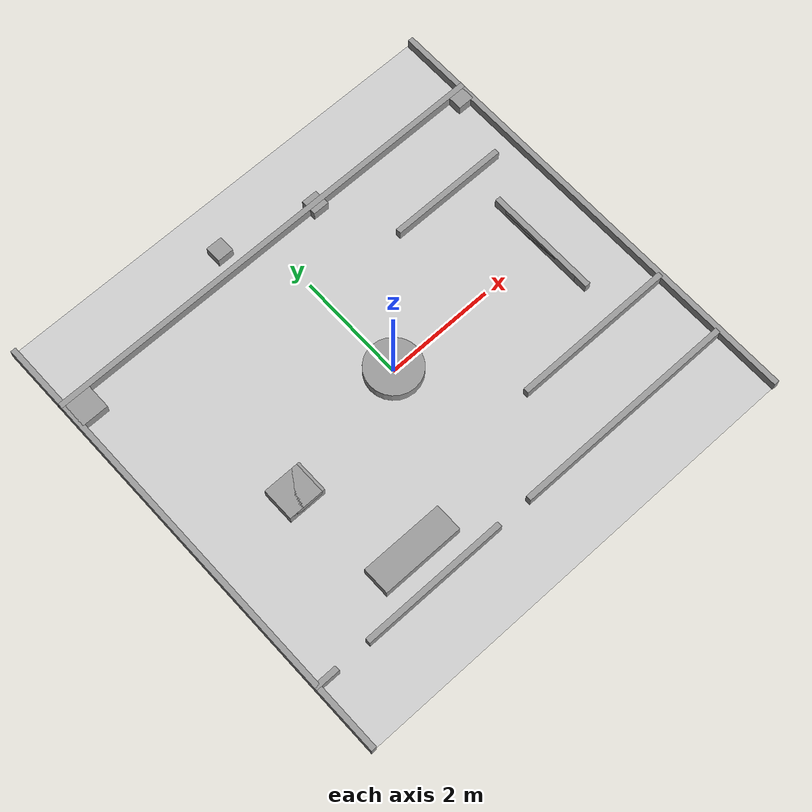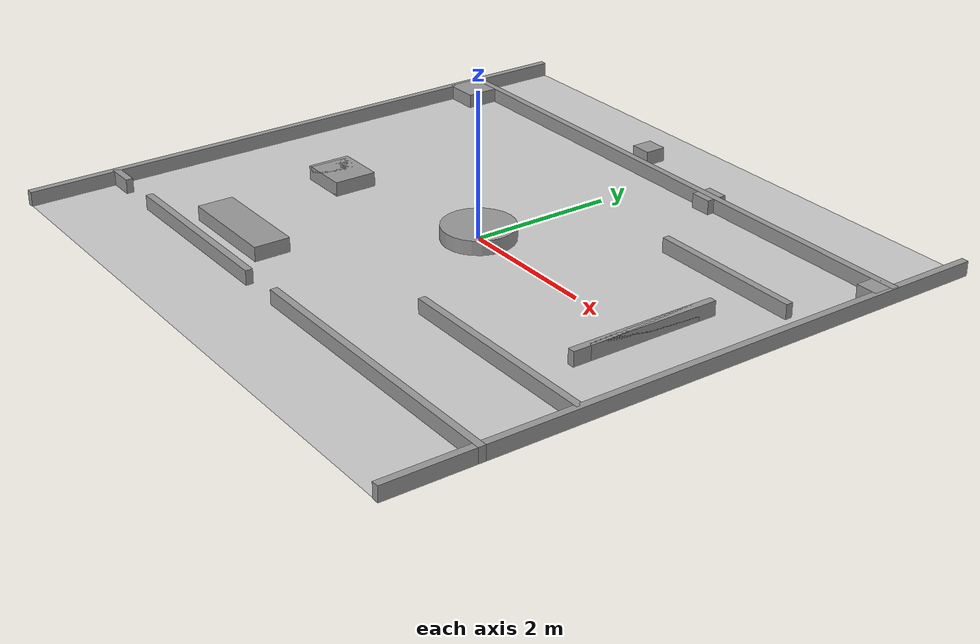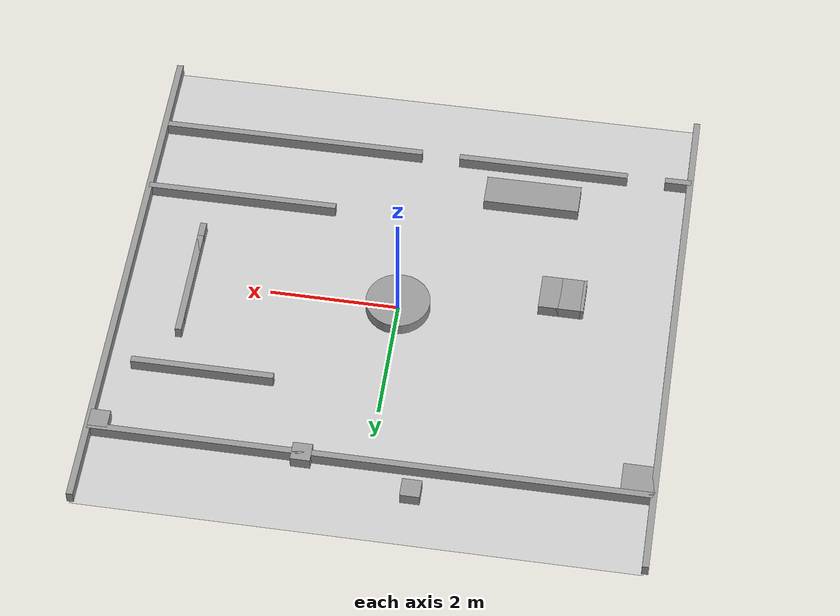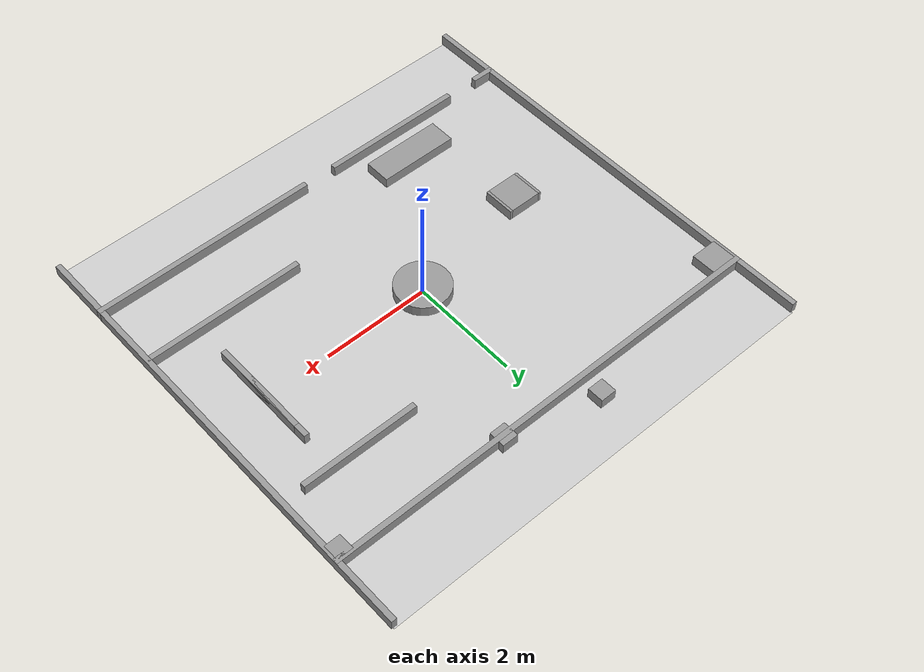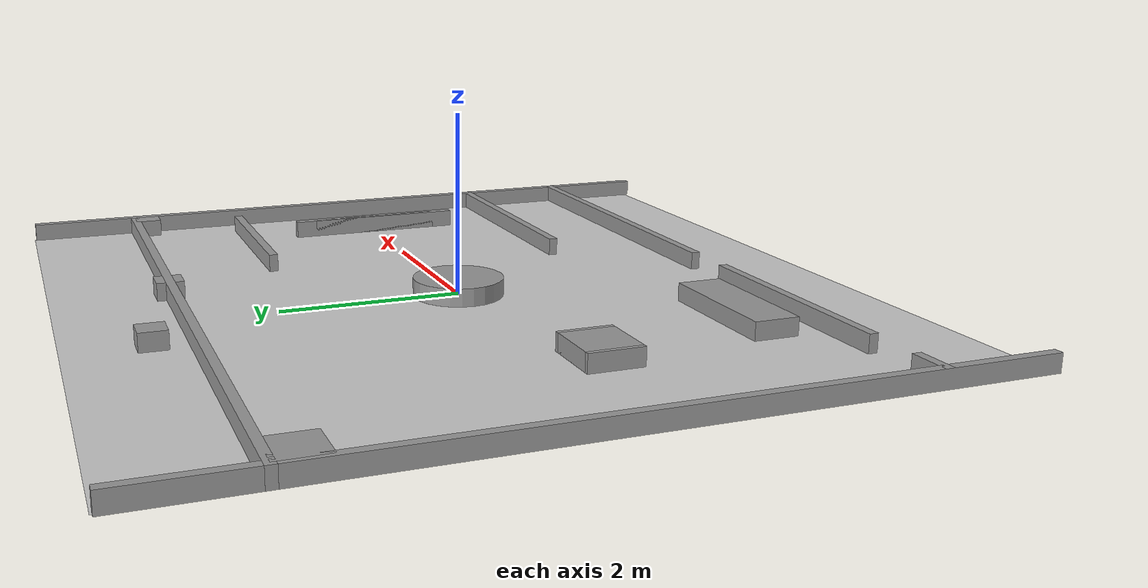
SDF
<sdf version="1.6">
 <world name="default">
  <light name="sun" type="directional">
   <pose>0 0 10 0 -0 0</pose>
   <diffuse>0.8 0.8 0.8 1</diffuse>
   <specular>0.2 0.2 0.2 1</specular>
   <attenuation>
    <range>1000</range>
    <constant>0.9</constant>
    <linear>0.01</linear>
    <quadratic>0.001</quadratic>
   </attenuation>
   <direction>-0.5 0.1 -0.9</direction>
  </light>
  <gravity>0 0 -9.8</gravity>
  <magnetic_field>6e-06 2.3e-05 -4.2e-05</magnetic_field>
  <atmosphere type="adiabatic"/>
  <physics name="default_physics" default="0" type="ode">
   <max_step_size>0.001</max_step_size>
   <real_time_factor>1</real_time_factor>
   <real_time_update_rate>1000</real_time_update_rate>
  </physics>
  <scene><ambient>0.4 0.4 0.4 1</ambient><background>0.7 0.7 0.7 1</background><shadows>1</shadows></scene>
  <audio><device>default</device></audio>
  <spherical_coordinates>
   <surface_model>EARTH_WGS84</surface_model>
   <latitude_deg>0</latitude_deg>
   <longitude_deg>0</longitude_deg>
   <elevation>0</elevation>
   <heading_deg>0</heading_deg>
  </spherical_coordinates>
  <model name="track_ground">
   <static>1</static>
   <link name="link">
    <collision name="collision">
     <geometry><plane><normal>0 0 1</normal><size>8.5 8.5</size></plane></geometry>
     <surface><friction><ode><mu>100</mu><mu2>50</mu2></ode></friction></surface>
    </collision>
    <visual name="visual">
     <cast_shadows>0</cast_shadows>
     <geometry><plane><normal>0 0 1</normal><size>8.5 8.5</size></plane></geometry>
     <material>
      <script>
       <uri>model://track_ground/materials/scripts</uri>
       <uri>model://track_ground/materials/textures/</uri>
       <name>TrackGround/Image</name>
      </script>
     </material>
    </visual>
   </link>
   <pose>0.018531 0.018531 0 0 -0 0</pose>
  </model>
  <model name="track_wall">
   <link name="Wall_10">
    <collision name="Wall_10_Collision">
     <geometry><box><size>0.45 0.1 0.2</size></box></geometry>
     <pose>0 0 0.1 0 0 0</pose>
    </collision>
    <visual name="Wall_10_Visual">
     <pose>0 0 0.1 0 0 0</pose>
     <geometry><box><size>0.45 0.1 0.2</size></box></geometry>
     <material>
      <script><uri>file://media/materials/scripts/gazebo.material</uri><name>Gazebo/Grey</name></script>
      <ambient>1 1 1 1</ambient>
     </material>
     <meta><layer>0</layer></meta>
    </visual>
    <pose>-4.075 -3 0 0 0 0</pose>
   </link>
   <link name="Wall_13">
    <collision name="Wall_13_Collision">
     <geometry><box><size>2.7 0.1 0.2</size></box></geometry>
     <pose>0 0 0.1 0 0 0</pose>
    </collision>
    <visual name="Wall_13_Visual">
     <pose>0 0 0.1 0 0 0</pose>
     <geometry><box><size>2.7 0.1 0.2</size></box></geometry>
     <material>
      <script><uri>file://media/materials/scripts/gazebo.material</uri><name>Gazebo/Grey</name></script>
      <ambient>1 1 1 1</ambient>
     </material>
     <meta><layer>0</layer></meta>
    </visual>
    <pose>-1.9 -3 0 0 0 0</pose>
   </link>
   <link name="Wall_15">
    <collision name="Wall_15_Collision">
     <geometry><box><size>4.25 0.1 0.2</size></box></geometry>
     <pose>0 0 0.1 0 0 0</pose>
    </collision>
    <visual name="Wall_15_Visual">
     <pose>0 0 0.1 0 0 0</pose>
     <geometry><box><size>4.25 0.1 0.2</size></box></geometry>
     <material>
      <script><uri>file://media/materials/scripts/gazebo.material</uri><name>Gazebo/Grey</name></script>
      <ambient>1 1 1 1</ambient>
     </material>
     <meta><layer>0</layer></meta>
    </visual>
    <pose>2.175 -3 0 0 0 0</pose>
   </link>
   <link name="Wall_17">
    <collision name="Wall_17_Collision">
     <geometry><box><size>2.2 0.1 0.2</size></box></geometry>
     <pose>0 0 0.1 0 0 0</pose>
    </collision>
    <visual name="Wall_17_Visual">
     <pose>0 0 0.1 0 0 0</pose>
     <geometry><box><size>2.2 0.1 0.2</size></box></geometry>
     <material>
      <script><uri>file://media/materials/scripts/gazebo.material</uri><name>Gazebo/Grey</name></script>
      <ambient>1 1 1 1</ambient>
     </material>
     <meta><layer>0</layer></meta>
    </visual>
    <pose>2.75 1.7 0 0 0 0</pose>
   </link>
   <link name="Wall_18">
    <collision name="Wall_18_Collision">
     <geometry><box><size>2.1 0.1 0.2</size></box></geometry>
     <pose>0 0 0.1 0 0 0</pose>
    </collision>
    <visual name="Wall_18_Visual">
     <pose>0 0 0.1 0 0 0</pose>
     <geometry><box><size>2.1 0.1 0.2</size></box></geometry>
     <material>
      <script><uri>file://media/materials/scripts/gazebo.material</uri><name>Gazebo/Grey</name></script>
      <ambient>1 1 1 1</ambient>
     </material>
     <meta><layer>0</layer></meta>
    </visual>
    <pose>3.25 0 0 0 0 -1.5708</pose>
   </link>
   <link name="Wall_19">
    <collision name="Wall_19_Collision">
     <geometry><box><size>3.0 0.1 0.2</size></box></geometry>
     <pose>0 0 0.1 0 0 0</pose>
    </collision>
    <visual name="Wall_19_Visual">
     <pose>0 0 0.1 0 0 0</pose>
     <geometry><box><size>3.0 0.1 0.2</size></box></geometry>
     <material>
      <script><uri>file://media/materials/scripts/gazebo.material</uri><name>Gazebo/Grey</name></script>
      <ambient>1 1 1 1</ambient>
     </material>
     <meta><layer>0</layer></meta>
    </visual>
    <pose>2.75 -1.7 0 0 0 3.14159</pose>
   </link>
   <link name="Wall_20">
    <collision name="Wall_20_Collision">
     <geometry><box><size>2.1 0.1 0.2</size></box></geometry>
     <pose>0 0 0.1 0 0 0</pose>
    </collision>
    <visual name="Wall_20_Visual">
     <pose>0 0 0.1 0 0 0</pose>
     <geometry><box><size>1.6 0.1 0.2</size></box></geometry>
     <material>
      <script><uri>file://media/materials/scripts/gazebo.material</uri><name>Gazebo/Grey</name></script>
      <ambient>1 1 1 1</ambient>
     </material>
     <meta><layer>0</layer></meta>
    </visual>
    <pose>3.25 0 0 0 0 -1.5708</pose>
   </link>
   <link name="Wall_21">
    <collision name="Wall_21_Collision">
     <geometry><box><size>0.6 0.6 0.2</size></box></geometry>
     <pose>0 0 0.1 0 0 0</pose>
    </collision>
    <visual name="Wall_21_Visual">
     <pose>0 0 0.1 0 0 0</pose>
     <geometry><box><size>0.6 0.6 0.2</size></box></geometry>
     <material>
      <script><uri>file://media/materials/scripts/gazebo.material</uri><name>Gazebo/Grey</name></script>
      <ambient>1 1 1 1</ambient>
     </material>
     <meta><layer>0</layer></meta>
    </visual>
    <pose>-2.5 -0.5 0 0 0 0</pose>
   </link>
   <link name="Wall_22">
    <collision name="Wall_22_Collision">
     <geometry><box><size>1.5 0.5 0.2</size></box></geometry>
     <pose>0 0 0.1 0 0 0</pose>
    </collision>
    <visual name="Wall_22_Visual">
     <pose>0 0 0.1 0 0 0</pose>
     <geometry><box><size>1.5 0.5 0.2</size></box></geometry>
     <material>
      <script><uri>file://media/materials/scripts/gazebo.material</uri><name>Gazebo/Grey</name></script>
      <ambient>1 1 1 1</ambient>
     </material>
     <meta><layer>0</layer></meta>
    </visual>
    <pose>-1.8 -2.4 0 0 0 0</pose>
   </link>
   <link name="Wall_23">
    <collision name="Wall_23_Collision">
     <geometry><box><size>0.5 0.5 0.2</size></box></geometry>
     <pose>0 0 0.1 0 0 0</pose>
    </collision>
    <visual name="Wall_23_Visual">
     <pose>0 0 0.1 0 0 0</pose>
     <geometry><box><size>0.5 0.5 0.2</size></box></geometry>
     <material>
      <script><uri>file://media/materials/scripts/gazebo.material</uri><name>Gazebo/Grey</name></script>
      <ambient>1 1 1 1</ambient>
     </material>
     <meta><layer>0</layer></meta>
    </visual>
    <pose>-4.0 2.75 0 0 0 0</pose>
   </link>
   <link name="Wall_24">
    <collision name="Wall_24_Collision">
     <geometry><box><size>0.3 0.3 0.2</size></box></geometry>
     <pose>0 0 0.1 0 0 0</pose>
    </collision>
    <visual name="Wall_24_Visual">
     <pose>0 0 0.1 0 0 0</pose>
     <geometry><box><size>0.3 0.3 0.2</size></box></geometry>
     <material>
      <script><uri>file://media/materials/scripts/gazebo.material</uri><name>Gazebo/Grey</name></script>
      <ambient>1 1 1 1</ambient>
     </material>
     <meta><layer>0</layer></meta>
    </visual>
    <pose>4.1 2.85 0 0 0 0</pose>
   </link>
   <link name="cylinder_25">
    <inertial>
     <mass>1</mass>
     <inertia><ixx>0.145833</ixx><ixy>0</ixy><ixz>0</ixz><iyy>0.145833</iyy><iyz>0</iyz><izz>0.125</izz></inertia>
    </inertial>
    <pose>0 -4e-06 0 0 -0 0</pose>
    <visual name="visual">
     <pose>0 0 0.1 0 -0 0</pose>
     <geometry><cylinder><radius>0.5</radius><length>0.2</length></cylinder></geometry>
     <material>
      <lighting>1</lighting>
      <script><uri>file://media/materials/scripts/gazebo.material</uri><name>Gazebo/Grey</name></script>
     </material>
    </visual>
    <collision name="collision">
     <pose>0 0 0.1 0 -0 0</pose>
     <geometry><cylinder><radius>0.5</radius><length>0.2</length></cylinder></geometry>
     <surface>
      <friction>
       <ode><mu>1</mu><mu2>1</mu2><fdir1>0 0 0</fdir1><slip1>0</slip1><slip2>0</slip2></ode>
       <torsional>
        <coefficient>1</coefficient>
        <patch_radius>0</patch_radius>
        <surface_radius>0</surface_radius>
        <use_patch_radius>1</use_patch_radius>
        <ode><slip>0</slip></ode>
       </torsional>
      </friction>
      <bounce><restitution_coefficient>0</restitution_coefficient><threshold>1e+06</threshold></bounce>
      <contact>
       <collide_without_contact>0</collide_without_contact>
       <collide_without_contact_bitmask>1</collide_without_contact_bitmask>
       <collide_bitmask>1</collide_bitmask>
       <ode>
        <soft_cfm>0</soft_cfm>
        <soft_erp>0.2</soft_erp>
        <kp>1e+13</kp>
        <kd>1</kd>
        <max_vel>0.01</max_vel>
        <min_depth>0</min_depth>
       </ode>
       <bullet>
        <split_impulse>1</split_impulse>
        <split_impulse_penetration_threshold>-0.01</split_impulse_penetration_threshold>
        <soft_cfm>0</soft_cfm>
        <soft_erp>0.2</soft_erp>
        <kp>1e+13</kp>
        <kd>1</kd>
       </bullet>
      </contact>
     </surface>
    </collision>
   </link>
   <link name="cylinder_10">
    <inertial>
     <mass>1</mass>
     <inertia><ixx>0.145833</ixx><ixy>0</ixy><ixz>0</ixz><iyy>0.145833</iyy><iyz>0</iyz><izz>0.125</izz></inertia>
    </inertial>
    <pose>0 -4e-06 0 0 -0 0</pose>
    <visual name="visual">
     <pose>0 0 0.1 0 -0 0</pose>
     <geometry><cylinder><radius>0.5</radius><length>0.2</length></cylinder></geometry>
     <material>
      <lighting>1</lighting>
      <script><uri>file://media/materials/scripts/gazebo.material</uri><name>Gazebo/Grey</name></script>
     </material>
    </visual>
    <collision name="collision">
     <pose>0 0 0.1 0 -0 0</pose>
     <geometry><cylinder><radius>0.5</radius><length>0.2</length></cylinder></geometry>
     <surface>
      <friction>
       <ode><mu>1</mu><mu2>1</mu2><fdir1>0 0 0</fdir1><slip1>0</slip1><slip2>0</slip2></ode>
       <torsional>
        <coefficient>1</coefficient>
        <patch_radius>0</patch_radius>
        <surface_radius>0</surface_radius>
        <use_patch_radius>1</use_patch_radius>
        <ode><slip>0</slip></ode>
       </torsional>
      </friction>
      <bounce><restitution_coefficient>0</restitution_coefficient><threshold>1e+06</threshold></bounce>
      <contact>
       <collide_without_contact>0</collide_without_contact>
       <collide_without_contact_bitmask>1</collide_without_contact_bitmask>
       <collide_bitmask>1</collide_bitmask>
       <ode>
        <soft_cfm>0</soft_cfm>
        <soft_erp>0.2</soft_erp>
        <kp>1e+13</kp>
        <kd>1</kd>
        <max_vel>0.01</max_vel>
        <min_depth>0</min_depth>
       </ode>
       <bullet>
        <split_impulse>1</split_impulse>
        <split_impulse_penetration_threshold>-0.01</split_impulse_penetration_threshold>
        <soft_cfm>0</soft_cfm>
        <soft_erp>0.2</soft_erp>
        <kp>1e+13</kp>
        <kd>1</kd>
       </bullet>
      </contact>
     </surface>
    </collision>
   </link>
   <link name="cylinder_11">
    <inertial>
     <mass>1</mass>
     <inertia><ixx>0.145833</ixx><ixy>0</ixy><ixz>0</ixz><iyy>0.145833</iyy><iyz>0</iyz><izz>0.125</izz></inertia>
    </inertial>
    <pose>0 -4e-06 0 0 -0 0</pose>
    <visual name="visual">
     <pose>0 0 0.1 0 -0 0</pose>
     <geometry><cylinder><radius>0.5</radius><length>0.2</length></cylinder></geometry>
     <material>
      <lighting>1</lighting>
      <script><uri>file://media/materials/scripts/gazebo.material</uri><name>Gazebo/Grey</name></script>
     </material>
    </visual>
    <collision name="collision">
     <pose>0 0 0.1 0 -0 0</pose>
     <geometry><cylinder><radius>0.5</radius><length>0.2</length></cylinder></geometry>
     <surface>
      <friction>
       <ode><mu>1</mu><mu2>1</mu2><fdir1>0 0 0</fdir1><slip1>0</slip1><slip2>0</slip2></ode>
       <torsional>
        <coefficient>1</coefficient>
        <patch_radius>0</patch_radius>
        <surface_radius>0</surface_radius>
        <use_patch_radius>1</use_patch_radius>
        <ode><slip>0</slip></ode>
       </torsional>
      </friction>
      <bounce><restitution_coefficient>0</restitution_coefficient><threshold>1e+06</threshold></bounce>
      <contact>
       <collide_without_contact>0</collide_without_contact>
       <collide_without_contact_bitmask>1</collide_without_contact_bitmask>
       <collide_bitmask>1</collide_bitmask>
       <ode>
        <soft_cfm>0</soft_cfm>
        <soft_erp>0.2</soft_erp>
        <kp>1e+13</kp>
        <kd>1</kd>
        <max_vel>0.01</max_vel>
        <min_depth>0</min_depth>
       </ode>
       <bullet>
        <split_impulse>1</split_impulse>
        <split_impulse_penetration_threshold>-0.01</split_impulse_penetration_threshold>
        <soft_cfm>0</soft_cfm>
        <soft_erp>0.2</soft_erp>
        <kp>1e+13</kp>
        <kd>1</kd>
       </bullet>
      </contact>
     </surface>
    </collision>
   </link>
   <link name="cylinder_13">
    <inertial>
     <mass>1</mass>
     <inertia><ixx>0.145833</ixx><ixy>0</ixy><ixz>0</ixz><iyy>0.145833</iyy><iyz>0</iyz><izz>0.125</izz></inertia>
    </inertial>
    <pose>0 -4e-06 0 0 -0 0</pose>
    <visual name="visual">
     <pose>0 0 0.1 0 -0 0</pose>
     <geometry><cylinder><radius>0.5</radius><length>0.2</length></cylinder></geometry>
     <material>
      <lighting>1</lighting>
      <script><uri>file://media/materials/scripts/gazebo.material</uri><name>Gazebo/Grey</name></script>
     </material>
    </visual>
    <collision name="collision">
     <pose>0 0 0.1 0 -0 0</pose>
     <geometry><cylinder><radius>0.5</radius><length>0.2</length></cylinder></geometry>
     <surface>
      <friction>
       <ode><mu>1</mu><mu2>1</mu2><fdir1>0 0 0</fdir1><slip1>0</slip1><slip2>0</slip2></ode>
       <torsional>
        <coefficient>1</coefficient>
        <patch_radius>0</patch_radius>
        <surface_radius>0</surface_radius>
        <use_patch_radius>1</use_patch_radius>
        <ode><slip>0</slip></ode>
       </torsional>
      </friction>
      <bounce><restitution_coefficient>0</restitution_coefficient><threshold>1e+06</threshold></bounce>
      <contact>
       <collide_without_contact>0</collide_without_contact>
       <collide_without_contact_bitmask>1</collide_without_contact_bitmask>
       <collide_bitmask>1</collide_bitmask>
       <ode>
        <soft_cfm>0</soft_cfm>
        <soft_erp>0.2</soft_erp>
        <kp>1e+13</kp>
        <kd>1</kd>
        <max_vel>0.01</max_vel>
        <min_depth>0</min_depth>
       </ode>
       <bullet>
        <split_impulse>1</split_impulse>
        <split_impulse_penetration_threshold>-0.01</split_impulse_penetration_threshold>
        <soft_cfm>0</soft_cfm>
        <soft_erp>0.2</soft_erp>
        <kp>1e+13</kp>
        <kd>1</kd>
       </bullet>
      </contact>
     </surface>
    </collision>
   </link>
   <link name="cylinder_12">
    <inertial>
     <mass>1</mass>
     <inertia><ixx>0.145833</ixx><ixy>0</ixy><ixz>0</ixz><iyy>0.145833</iyy><iyz>0</iyz><izz>0.125</izz></inertia>
    </inertial>
    <pose>0 -4e-06 0 0 -0 0</pose>
    <visual name="visual">
     <pose>0 0 0.1 0 -0 0</pose>
     <geometry><cylinder><radius>0.5</radius><length>0.2</length></cylinder></geometry>
     <material>
      <lighting>1</lighting>
      <script><uri>file://media/materials/scripts/gazebo.material</uri><name>Gazebo/Grey</name></script>
     </material>
    </visual>
    <collision name="collision">
     <pose>0 0 0.1 0 -0 0</pose>
     <geometry><cylinder><radius>0.5</radius><length>0.2</length></cylinder></geometry>
     <surface>
      <friction>
       <ode><mu>1</mu><mu2>1</mu2><fdir1>0 0 0</fdir1><slip1>0</slip1><slip2>0</slip2></ode>
       <torsional>
        <coefficient>1</coefficient>
        <patch_radius>0</patch_radius>
        <surface_radius>0</surface_radius>
        <use_patch_radius>1</use_patch_radius>
        <ode><slip>0</slip></ode>
       </torsional>
      </friction>
      <bounce><restitution_coefficient>0</restitution_coefficient><threshold>1e+06</threshold></bounce>
      <contact>
       <collide_without_contact>0</collide_without_contact>
       <collide_without_contact_bitmask>1</collide_without_contact_bitmask>
       <collide_bitmask>1</collide_bitmask>
       <ode>
        <soft_cfm>0</soft_cfm>
        <soft_erp>0.2</soft_erp>
        <kp>1e+13</kp>
        <kd>1</kd>
        <max_vel>0.01</max_vel>
        <min_depth>0</min_depth>
       </ode>
       <bullet>
        <split_impulse>1</split_impulse>
        <split_impulse_penetration_threshold>-0.01</split_impulse_penetration_threshold>
        <soft_cfm>0</soft_cfm>
        <soft_erp>0.2</soft_erp>
        <kp>1e+13</kp>
        <kd>1</kd>
       </bullet>
      </contact>
     </surface>
    </collision>
   </link>
   <link name="Wall_4">
    <collision name="Wall_4_Collision">
     <geometry><box><size>8.6 0.1 0.2</size></box></geometry>
     <pose>0 0 0.1 0 0 0</pose>
    </collision>
    <visual name="Wall_4_Visual">
     <pose>0 0 0.1 0 0 0</pose>
     <geometry><box><size>8.6 0.1 0.2</size></box></geometry>
     <material>
      <script><uri>file://media/materials/scripts/gazebo.material</uri><name>Gazebo/Grey</name></script>
      <ambient>1 1 1 1</ambient>
     </material>
     <meta><layer>0</layer></meta>
    </visual>
    <pose>0 3 0 0 0 0</pose>
   </link>
   <link name="Wall_5">
    <collision name="Wall_5_Collision">
     <geometry><box><size>8.5 0.1 0.2</size></box></geometry>
     <pose>0 0 0.1 0 0 0</pose>
    </collision>
    <visual name="Wall_5_Visual">
     <pose>0 0 0.1 0 0 0</pose>
     <geometry><box><size>8.5 0.1 0.2</size></box></geometry>
     <material>
      <script><uri>file://media/materials/scripts/gazebo.material</uri><name>Gazebo/Grey</name></script>
      <ambient>1 1 1 1</ambient>
     </material>
     <meta><layer>0</layer></meta>
    </visual>
    <pose>4.25 0 0 0 0 -1.5708</pose>
   </link>
   <link name="Wall_8">
    <collision name="Wall_8_Collision">
     <geometry><box><size>8.5 0.1 0.2</size></box></geometry>
     <pose>0 0 0.1 0 -0 0</pose>
    </collision>
    <visual name="Wall_8_Visual">
     <pose>0 0 0.1 0 0 0</pose>
     <geometry><box><size>8.5 0.1 0.2</size></box></geometry>
     <material>
      <script><uri>file://media/materials/scripts/gazebo.material</uri><name>Gazebo/Grey</name></script>
      <ambient>1 1 1 1</ambient>
     </material>
     <meta><layer>0</layer></meta>
    </visual>
    <pose>-4.25 0 0 0 -0 -1.5708</pose>
   </link>
   <link name="Box_10">
    <collision name="Box_10_Collision">
     <geometry><box><size>0.6 0.6 0.2</size></box></geometry>
     <pose>0 0 0.1 0 0 0</pose>
    </collision>
    <visual name="Box_10_Visual">
     <pose>0 0 0.1 0 0 0</pose>
     <geometry><box><size>0.7 0.6 0.2</size></box></geometry>
     <material>
      <script><uri>file://media/materials/scripts/gazebo.material</uri><name>Gazebo/Grey</name></script>
      <ambient>1 1 1 1</ambient>
     </material>
     <meta><layer>0</layer></meta>
    </visual>
    <pose>-2.5 -0.5 0 0 0 0</pose>
   </link>
   <link name="Box_11">
    <collision name="Box_11_Collision">
     <geometry><box><size>0.3 0.3 0.2</size></box></geometry>
     <pose>0 0 0.1 0 0 0</pose>
    </collision>
    <visual name="Box_11_Visual">
     <pose>0 0 0.1 0 0 0</pose>
     <geometry><box><size>0.3 0.3 0.2</size></box></geometry>
     <material>
      <script><uri>file://media/materials/scripts/gazebo.material</uri><name>Gazebo/Grey</name></script>
      <ambient>1 1 1 1</ambient>
     </material>
     <meta><layer>0</layer></meta>
    </visual>
    <pose>-0.7 3.4 0 0 0 0</pose>
   </link>
   <link name="Box_12">
    <collision name="Box_12_Collision">
     <geometry><box><size>0.3 0.3 0.2</size></box></geometry>
     <pose>0 0 0.1 0 0 0</pose>
    </collision>
    <visual name="Box_12_Visual">
     <pose>0 0 0.1 0 0 0</pose>
     <geometry><box><size>0.3 0.3 0.2</size></box></geometry>
     <material>
      <script><uri>file://media/materials/scripts/gazebo.material</uri><name>Gazebo/Grey</name></script>
      <ambient>1 1 1 1</ambient>
     </material>
     <meta><layer>0</layer></meta>
    </visual>
    <pose>1.0 3.0 0 0 0 0</pose>
   </link>
   <static>1</static>
  </model>
 </world>
</sdf>
